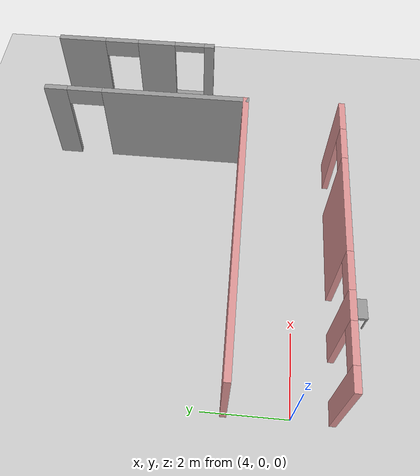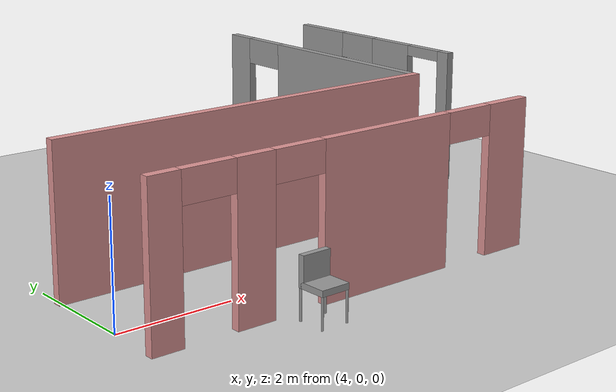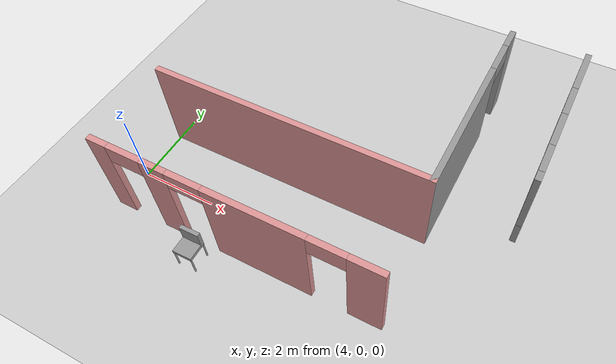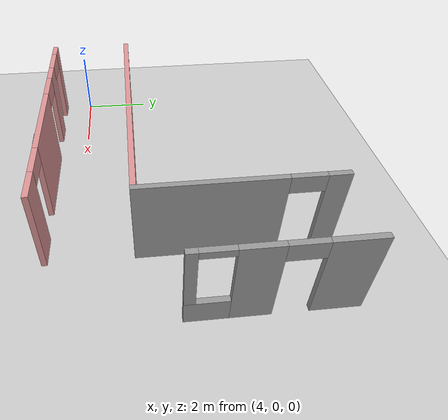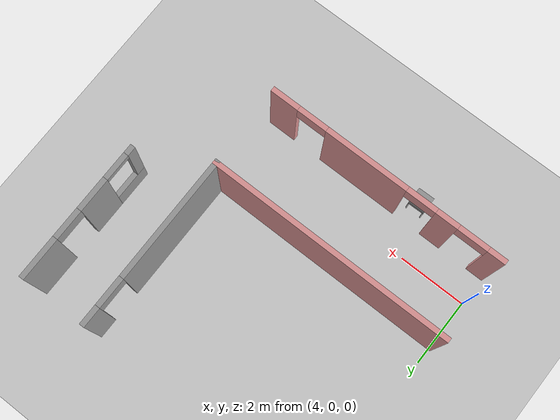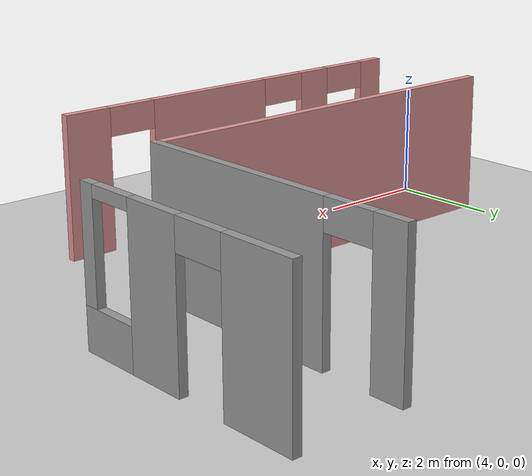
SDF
<sdf version="1.6">
 <world name="default">
  <model name="ground_plane">
   <static>1</static>
   <link name="link">
    <collision name="collision">
     <geometry><plane><normal>0 0 1</normal><size>100 100</size></plane></geometry>
     <surface>
      <contact><collide_bitmask>65535</collide_bitmask></contact>
      <friction><ode><mu>100</mu><mu2>50</mu2></ode></friction>
     </surface>
    </collision>
    <visual name="visual">
     <cast_shadows>0</cast_shadows>
     <geometry><plane><normal>0 0 1</normal><size>100 100</size></plane></geometry>
     <material>
      <script><uri>file://media/materials/scripts/gazebo.material</uri><name>Gazebo/Grey</name></script>
     </material>
    </visual>
   </link>
  </model>
  <model name="dunder_mifflin_scranton_full">
   <pose>4.5312 0.479645 0 0 -0 0</pose>
   <link name="Wall_31">
    <collision name="Wall_31_Collision">
     <geometry><box><size>7.25 0.15 2.5</size></box></geometry>
     <pose>0 0 1.25 0 -0 0</pose>
    </collision>
    <visual name="Wall_31_Visual">
     <pose>0 0 1.25 0 -0 0</pose>
     <geometry><box><size>7.25 0.15 2.5</size></box></geometry>
     <material>
      <script><uri>file://media/materials/scripts/gazebo.material</uri><name>Gazebo/Grey</name></script>
      <ambient>0.866667 0.584314 0.584314 1</ambient>
     </material>
     <meta><layer>0</layer></meta>
    </visual>
    <pose>3.02474 0.997169 0 0 -0 0</pose>
   </link>
   <link name="Wall_34">
    <pose>3.04223 -1.39897 0 0 -0 0</pose>
    <visual name="Wall_34_Visual_0">
     <pose>-3.36018 0 1.25 0 -0 0</pose>
     <geometry><box><size>0.529643 0.15 2.5</size></box></geometry>
     <material>
      <script><uri>file://media/materials/scripts/gazebo.material</uri><name>Gazebo/Grey</name></script>
      <ambient>0.866667 0.584314 0.584314 1</ambient>
     </material>
     <meta><layer>0</layer></meta>
    </visual>
    <collision name="Wall_34_Collision_0">
     <geometry><box><size>0.529643 0.15 2.5</size></box></geometry>
     <pose>-3.36018 0 1.25 0 -0 0</pose>
    </collision>
    <visual name="Wall_34_Visual_1">
     <pose>-1.86211 0 1.25 0 -0 0</pose>
     <geometry><box><size>0.666501 0.15 2.5</size></box></geometry>
     <material>
      <script><uri>file://media/materials/scripts/gazebo.material</uri><name>Gazebo/Grey</name></script>
      <ambient>0.866667 0.584314 0.584314 1</ambient>
     </material>
     <meta><layer>0</layer></meta>
    </visual>
    <collision name="Wall_34_Collision_1">
     <geometry><box><size>0.666501 0.15 2.5</size></box></geometry>
     <pose>-1.86211 0 1.25 0 -0 0</pose>
    </collision>
    <visual name="Wall_34_Visual_2">
     <pose>0.624524 0 1.25 0 -0 0</pose>
     <geometry><box><size>2.50676 0.15 2.5</size></box></geometry>
     <material>
      <script><uri>file://media/materials/scripts/gazebo.material</uri><name>Gazebo/Grey</name></script>
      <ambient>0.866667 0.584314 0.584314 1</ambient>
     </material>
     <meta><layer>0</layer></meta>
    </visual>
    <collision name="Wall_34_Collision_2">
     <geometry><box><size>2.50676 0.15 2.5</size></box></geometry>
     <pose>0.624524 0 1.25 0 -0 0</pose>
    </collision>
    <visual name="Wall_34_Visual_3">
     <pose>3.20145 0 1.25 0 -0 0</pose>
     <geometry><box><size>0.847096 0.15 2.5</size></box></geometry>
     <material>
      <script><uri>file://media/materials/scripts/gazebo.material</uri><name>Gazebo/Grey</name></script>
      <ambient>0.866667 0.584314 0.584314 1</ambient>
     </material>
     <meta><layer>0</layer></meta>
    </visual>
    <collision name="Wall_34_Collision_3">
     <geometry><box><size>0.847096 0.15 2.5</size></box></geometry>
     <pose>3.20145 0 1.25 0 -0 0</pose>
    </collision>
    <visual name="Wall_34_Visual_4">
     <pose>-2.64536 0 2.25 0 -0 0</pose>
     <geometry><box><size>0.9 0.15 0.5</size></box></geometry>
     <material>
      <script><uri>file://media/materials/scripts/gazebo.material</uri><name>Gazebo/Grey</name></script>
      <ambient>0.866667 0.584314 0.584314 1</ambient>
     </material>
     <meta><layer>0</layer></meta>
    </visual>
    <collision name="Wall_34_Collision_4">
     <geometry><box><size>0.9 0.15 0.5</size></box></geometry>
     <pose>-2.64536 0 2.25 0 -0 0</pose>
    </collision>
    <visual name="Wall_34_Visual_5">
     <pose>-1.07886 0 2.25 0 -0 0</pose>
     <geometry><box><size>0.9 0.15 0.5</size></box></geometry>
     <material>
      <script><uri>file://media/materials/scripts/gazebo.material</uri><name>Gazebo/Grey</name></script>
      <ambient>0.866667 0.584314 0.584314 1</ambient>
     </material>
     <meta><layer>0</layer></meta>
    </visual>
    <collision name="Wall_34_Collision_5">
     <geometry><box><size>0.9 0.15 0.5</size></box></geometry>
     <pose>-1.07886 0 2.25 0 -0 0</pose>
    </collision>
    <visual name="Wall_34_Visual_6">
     <pose>2.3279 0 2.25 0 -0 0</pose>
     <geometry><box><size>0.9 0.15 0.5</size></box></geometry>
     <material>
      <script><uri>file://media/materials/scripts/gazebo.material</uri><name>Gazebo/Grey</name></script>
      <ambient>0.866667 0.584314 0.584314 1</ambient>
     </material>
     <meta><layer>0</layer></meta>
    </visual>
    <collision name="Wall_34_Collision_6">
     <geometry><box><size>0.9 0.15 0.5</size></box></geometry>
     <pose>2.3279 0 2.25 0 -0 0</pose>
    </collision>
   </link>
   <link name="Wall_36">
    <pose>6.57474 3.54717 0 0 -0 1.5708</pose>
    <visual name="Wall_36_Visual_0">
     <pose>-0.74582 0 1.25 0 -0 0</pose>
     <geometry><box><size>3.75836 0.15 2.5</size></box></geometry>
     <material>
      <script><uri>file://media/materials/scripts/gazebo.material</uri><name>Gazebo/Grey</name></script>
      <ambient>1 1 1 1</ambient>
     </material>
     <meta><layer>0</layer></meta>
    </visual>
    <collision name="Wall_36_Collision_0">
     <geometry><box><size>3.75836 0.15 2.5</size></box></geometry>
     <pose>-0.74582 0 1.25 0 -0 0</pose>
    </collision>
    <visual name="Wall_36_Visual_1">
     <pose>2.32918 0 1.25 0 -0 0</pose>
     <geometry><box><size>0.591641 0.15 2.5</size></box></geometry>
     <material>
      <script><uri>file://media/materials/scripts/gazebo.material</uri><name>Gazebo/Grey</name></script>
      <ambient>1 1 1 1</ambient>
     </material>
     <meta><layer>0</layer></meta>
    </visual>
    <collision name="Wall_36_Collision_1">
     <geometry><box><size>0.591641 0.15 2.5</size></box></geometry>
     <pose>2.32918 0 1.25 0 -0 0</pose>
    </collision>
    <visual name="Wall_36_Visual_2">
     <pose>1.58336 0 2.25 0 -0 0</pose>
     <geometry><box><size>0.9 0.15 0.5</size></box></geometry>
     <material>
      <script><uri>file://media/materials/scripts/gazebo.material</uri><name>Gazebo/Grey</name></script>
      <ambient>1 1 1 1</ambient>
     </material>
     <meta><layer>0</layer></meta>
    </visual>
    <collision name="Wall_36_Collision_2">
     <geometry><box><size>0.9 0.15 0.5</size></box></geometry>
     <pose>1.58336 0 2.25 0 -0 0</pose>
    </collision>
   </link>
   <link name="Wall_38">
    <pose>8.48212 4.07176 0 0 -0 -1.5708</pose>
    <visual name="Wall_38_Visual_0">
     <pose>-1.4899 0 1.25 0 -0 0</pose>
     <geometry><box><size>1.27021 0.15 2.5</size></box></geometry>
     <material>
      <script><uri>file://media/materials/scripts/gazebo.material</uri><name>Gazebo/Grey</name></script>
      <ambient>0.423529 0.423529 0.423529 1</ambient>
     </material>
     <meta><layer>0</layer></meta>
    </visual>
    <collision name="Wall_38_Collision_0">
     <geometry><box><size>1.27021 0.15 2.5</size></box></geometry>
     <pose>-1.4899 0 1.25 0 -0 0</pose>
    </collision>
    <visual name="Wall_38_Visual_1">
     <pose>0.548931 0 1.25 0 -0 0</pose>
     <geometry><box><size>1.00745 0.15 2.5</size></box></geometry>
     <material>
      <script><uri>file://media/materials/scripts/gazebo.material</uri><name>Gazebo/Grey</name></script>
      <ambient>0.423529 0.423529 0.423529 1</ambient>
     </material>
     <meta><layer>0</layer></meta>
    </visual>
    <collision name="Wall_38_Collision_1">
     <geometry><box><size>1.00745 0.15 2.5</size></box></geometry>
     <pose>0.548931 0 1.25 0 -0 0</pose>
    </collision>
    <visual name="Wall_38_Visual_2">
     <pose>1.58883 0 0.35 0 -0 0</pose>
     <geometry><box><size>1.07234 0.15 0.7</size></box></geometry>
     <material>
      <script><uri>file://media/materials/scripts/gazebo.material</uri><name>Gazebo/Grey</name></script>
      <ambient>0.423529 0.423529 0.423529 1</ambient>
     </material>
     <meta><layer>0</layer></meta>
    </visual>
    <collision name="Wall_38_Collision_2">
     <geometry><box><size>1.07234 0.15 0.7</size></box></geometry>
     <pose>1.58883 0 0.35 0 -0 0</pose>
    </collision>
    <visual name="Wall_38_Visual_3">
     <pose>1.98883 0 1.6 0 -0 0</pose>
     <geometry><box><size>0.272344 0.15 1.8</size></box></geometry>
     <material>
      <script><uri>file://media/materials/scripts/gazebo.material</uri><name>Gazebo/Grey</name></script>
      <ambient>0.423529 0.423529 0.423529 1</ambient>
     </material>
     <meta><layer>0</layer></meta>
    </visual>
    <collision name="Wall_38_Collision_3">
     <geometry><box><size>0.272344 0.15 1.8</size></box></geometry>
     <pose>1.98883 0 1.6 0 -0 0</pose>
    </collision>
    <visual name="Wall_38_Visual_4">
     <pose>-0.404794 0 2.25 0 -0 0</pose>
     <geometry><box><size>0.9 0.15 0.5</size></box></geometry>
     <material>
      <script><uri>file://media/materials/scripts/gazebo.material</uri><name>Gazebo/Grey</name></script>
      <ambient>0.423529 0.423529 0.423529 1</ambient>
     </material>
     <meta><layer>0</layer></meta>
    </visual>
    <collision name="Wall_38_Collision_4">
     <geometry><box><size>0.9 0.15 0.5</size></box></geometry>
     <pose>-0.404794 0 2.25 0 -0 0</pose>
    </collision>
    <visual name="Wall_38_Visual_5">
     <pose>1.45266 0 2.4 0 -0 0</pose>
     <geometry><box><size>0.8 0.15 0.2</size></box></geometry>
     <material>
      <script><uri>file://media/materials/scripts/gazebo.material</uri><name>Gazebo/Grey</name></script>
      <ambient>0.423529 0.423529 0.423529 1</ambient>
     </material>
     <meta><layer>0</layer></meta>
    </visual>
    <collision name="Wall_38_Collision_5">
     <geometry><box><size>0.8 0.15 0.2</size></box></geometry>
     <pose>1.45266 0 2.4 0 -0 0</pose>
    </collision>
   </link>
   <static>1</static>
  </model>
  <model name="chair_13">
   <link name="link_0">
    <inertial>
     <mass>1</mass>
     <inertia><ixx>0.145833</ixx><ixy>0</ixy><ixz>0</ixz><iyy>0.145833</iyy><iyz>0</iyz><izz>0.125</izz></inertia>
    </inertial>
    <pose>-0.23 -0.19667 -0.280001 0 -0 0</pose>
    <visual name="visual">
     <geometry><cylinder><radius>0.02</radius><length>0.5</length></cylinder></geometry>
     <material>
      <lighting>1</lighting>
      <script><uri>file://media/materials/scripts/gazebo.material</uri><name>Gazebo/Grey</name></script>
      <shader type="vertex"><normal_map>__default__</normal_map></shader>
      <ambient>0.3 0.3 0.3 1</ambient>
      <diffuse>0.7 0.7 0.7 1</diffuse>
      <specular>0.01 0.01 0.01 1</specular>
      <emissive>0 0 0 1</emissive>
     </material>
    </visual>
    <collision name="collision">
     <geometry><cylinder><radius>0.02</radius><length>0.5</length></cylinder></geometry>
     <surface>
      <friction>
       <ode><mu>1</mu><mu2>1</mu2><fdir1>0 0 0</fdir1><slip1>0</slip1><slip2>0</slip2></ode>
       <torsional>
        <coefficient>1</coefficient>
        <patch_radius>0</patch_radius>
        <surface_radius>0</surface_radius>
        <use_patch_radius>1</use_patch_radius>
        <ode><slip>0</slip></ode>
       </torsional>
      </friction>
      <bounce><restitution_coefficient>0</restitution_coefficient><threshold>1e+06</threshold></bounce>
      <contact>
       <collide_without_contact>0</collide_without_contact>
       <collide_without_contact_bitmask>1</collide_without_contact_bitmask>
       <collide_bitmask>1</collide_bitmask>
       <ode>
        <soft_cfm>0</soft_cfm>
        <soft_erp>0.2</soft_erp>
        <kp>1e+13</kp>
        <kd>1</kd>
        <max_vel>0.01</max_vel>
        <min_depth>0</min_depth>
       </ode>
       <bullet>
        <split_impulse>1</split_impulse>
        <split_impulse_penetration_threshold>-0.01</split_impulse_penetration_threshold>
        <soft_cfm>0</soft_cfm>
        <soft_erp>0.2</soft_erp>
        <kp>1e+13</kp>
        <kd>1</kd>
       </bullet>
      </contact>
     </surface>
    </collision>
   </link>
   <link name="link_0_clone">
    <inertial>
     <mass>1</mass>
     <inertia><ixx>0.145833</ixx><ixy>0</ixy><ixz>0</ixz><iyy>0.145833</iyy><iyz>0</iyz><izz>0.125</izz></inertia>
    </inertial>
    <pose>0.23 -0.19667 -0.280001 0 -0 0</pose>
    <visual name="visual">
     <geometry><cylinder><radius>0.02</radius><length>0.5</length></cylinder></geometry>
     <material>
      <lighting>1</lighting>
      <script><uri>file://media/materials/scripts/gazebo.material</uri><name>Gazebo/Grey</name></script>
      <shader type="vertex"><normal_map>__default__</normal_map></shader>
      <ambient>0.3 0.3 0.3 1</ambient>
      <diffuse>0.7 0.7 0.7 1</diffuse>
      <specular>0.01 0.01 0.01 1</specular>
      <emissive>0 0 0 1</emissive>
     </material>
    </visual>
    <collision name="collision">
     <geometry><cylinder><radius>0.02</radius><length>0.5</length></cylinder></geometry>
     <surface>
      <friction>
       <ode><mu>1</mu><mu2>1</mu2><fdir1>0 0 0</fdir1><slip1>0</slip1><slip2>0</slip2></ode>
       <torsional>
        <coefficient>1</coefficient>
        <patch_radius>0</patch_radius>
        <surface_radius>0</surface_radius>
        <use_patch_radius>1</use_patch_radius>
        <ode><slip>0</slip></ode>
       </torsional>
      </friction>
      <bounce><restitution_coefficient>0</restitution_coefficient><threshold>1e+06</threshold></bounce>
      <contact>
       <collide_without_contact>0</collide_without_contact>
       <collide_without_contact_bitmask>1</collide_without_contact_bitmask>
       <collide_bitmask>1</collide_bitmask>
       <ode>
        <soft_cfm>0</soft_cfm>
        <soft_erp>0.2</soft_erp>
        <kp>1e+13</kp>
        <kd>1</kd>
        <max_vel>0.01</max_vel>
        <min_depth>0</min_depth>
       </ode>
       <bullet>
        <split_impulse>1</split_impulse>
        <split_impulse_penetration_threshold>-0.01</split_impulse_penetration_threshold>
        <soft_cfm>0</soft_cfm>
        <soft_erp>0.2</soft_erp>
        <kp>1e+13</kp>
        <kd>1</kd>
       </bullet>
      </contact>
     </surface>
    </collision>
   </link>
   <link name="link_0_clone_0">
    <inertial>
     <mass>1</mass>
     <inertia><ixx>0.145833</ixx><ixy>0</ixy><ixz>0</ixz><iyy>0.145833</iyy><iyz>0</iyz><izz>0.125</izz></inertia>
    </inertial>
    <pose>0.23 0.26333 -0.280001 0 -0 0</pose>
    <visual name="visual">
     <geometry><cylinder><radius>0.02</radius><length>0.5</length></cylinder></geometry>
     <material>
      <lighting>1</lighting>
      <script><uri>file://media/materials/scripts/gazebo.material</uri><name>Gazebo/Grey</name></script>
      <shader type="vertex"><normal_map>__default__</normal_map></shader>
      <ambient>0.3 0.3 0.3 1</ambient>
      <diffuse>0.7 0.7 0.7 1</diffuse>
      <specular>0.01 0.01 0.01 1</specular>
      <emissive>0 0 0 1</emissive>
     </material>
    </visual>
    <collision name="collision">
     <geometry><cylinder><radius>0.02</radius><length>0.5</length></cylinder></geometry>
     <surface>
      <friction>
       <ode><mu>1</mu><mu2>1</mu2><fdir1>0 0 0</fdir1><slip1>0</slip1><slip2>0</slip2></ode>
       <torsional>
        <coefficient>1</coefficient>
        <patch_radius>0</patch_radius>
        <surface_radius>0</surface_radius>
        <use_patch_radius>1</use_patch_radius>
        <ode><slip>0</slip></ode>
       </torsional>
      </friction>
      <bounce><restitution_coefficient>0</restitution_coefficient><threshold>1e+06</threshold></bounce>
      <contact>
       <collide_without_contact>0</collide_without_contact>
       <collide_without_contact_bitmask>1</collide_without_contact_bitmask>
       <collide_bitmask>1</collide_bitmask>
       <ode>
        <soft_cfm>0</soft_cfm>
        <soft_erp>0.2</soft_erp>
        <kp>1e+13</kp>
        <kd>1</kd>
        <max_vel>0.01</max_vel>
        <min_depth>0</min_depth>
       </ode>
       <bullet>
        <split_impulse>1</split_impulse>
        <split_impulse_penetration_threshold>-0.01</split_impulse_penetration_threshold>
        <soft_cfm>0</soft_cfm>
        <soft_erp>0.2</soft_erp>
        <kp>1e+13</kp>
        <kd>1</kd>
       </bullet>
      </contact>
     </surface>
    </collision>
   </link>
   <link name="link_0_clone_1">
    <inertial>
     <mass>1</mass>
     <inertia><ixx>0.145833</ixx><ixy>0</ixy><ixz>0</ixz><iyy>0.145833</iyy><iyz>0</iyz><izz>0.125</izz></inertia>
    </inertial>
    <pose>-0.23 0.26333 -0.280001 0 -0 0</pose>
    <visual name="visual">
     <geometry><cylinder><radius>0.02</radius><length>0.5</length></cylinder></geometry>
     <material>
      <lighting>1</lighting>
      <script><uri>file://media/materials/scripts/gazebo.material</uri><name>Gazebo/Grey</name></script>
      <shader type="vertex"><normal_map>__default__</normal_map></shader>
      <ambient>0.3 0.3 0.3 1</ambient>
      <diffuse>0.7 0.7 0.7 1</diffuse>
      <specular>0.01 0.01 0.01 1</specular>
      <emissive>0 0 0 1</emissive>
     </material>
    </visual>
    <collision name="collision">
     <geometry><cylinder><radius>0.02</radius><length>0.5</length></cylinder></geometry>
     <surface>
      <friction>
       <ode><mu>1</mu><mu2>1</mu2><fdir1>0 0 0</fdir1><slip1>0</slip1><slip2>0</slip2></ode>
       <torsional>
        <coefficient>1</coefficient>
        <patch_radius>0</patch_radius>
        <surface_radius>0</surface_radius>
        <use_patch_radius>1</use_patch_radius>
        <ode><slip>0</slip></ode>
       </torsional>
      </friction>
      <bounce><restitution_coefficient>0</restitution_coefficient><threshold>1e+06</threshold></bounce>
      <contact>
       <collide_without_contact>0</collide_without_contact>
       <collide_without_contact_bitmask>1</collide_without_contact_bitmask>
       <collide_bitmask>1</collide_bitmask>
       <ode>
        <soft_cfm>0</soft_cfm>
        <soft_erp>0.2</soft_erp>
        <kp>1e+13</kp>
        <kd>1</kd>
        <max_vel>0.01</max_vel>
        <min_depth>0</min_depth>
       </ode>
       <bullet>
        <split_impulse>1</split_impulse>
        <split_impulse_penetration_threshold>-0.01</split_impulse_penetration_threshold>
        <soft_cfm>0</soft_cfm>
        <soft_erp>0.2</soft_erp>
        <kp>1e+13</kp>
        <kd>1</kd>
       </bullet>
      </contact>
     </surface>
    </collision>
   </link>
   <link name="link_2">
    <inertial>
     <mass>1</mass>
     <inertia>
      <ixx>0.166667</ixx>
      <ixy>0</ixy>
      <ixz>0</ixz>
      <iyy>0.166667</iyy>
      <iyz>0</iyz>
      <izz>0.166667</izz>
     </inertia>
    </inertial>
    <pose>0 0.03333 0.019999 0 -0 0</pose>
    <visual name="visual">
     <geometry><box><size>0.5 0.5 0.1</size></box></geometry>
     <material>
      <lighting>1</lighting>
      <script><uri>file://media/materials/scripts/gazebo.material</uri><name>Gazebo/Grey</name></script>
      <shader type="vertex"><normal_map>__default__</normal_map></shader>
      <ambient>0.3 0.3 0.3 1</ambient>
      <diffuse>0.7 0.7 0.7 1</diffuse>
      <specular>0.01 0.01 0.01 1</specular>
      <emissive>0 0 0 1</emissive>
     </material>
    </visual>
    <collision name="collision">
     <geometry><box><size>0.5 0.5 0.1</size></box></geometry>
     <surface>
      <friction>
       <ode><mu>1</mu><mu2>1</mu2><fdir1>0 0 0</fdir1><slip1>0</slip1><slip2>0</slip2></ode>
       <torsional>
        <coefficient>1</coefficient>
        <patch_radius>0</patch_radius>
        <surface_radius>0</surface_radius>
        <use_patch_radius>1</use_patch_radius>
        <ode><slip>0</slip></ode>
       </torsional>
      </friction>
      <bounce><restitution_coefficient>0</restitution_coefficient><threshold>1e+06</threshold></bounce>
      <contact>
       <collide_without_contact>0</collide_without_contact>
       <collide_without_contact_bitmask>1</collide_without_contact_bitmask>
       <collide_bitmask>1</collide_bitmask>
       <ode>
        <soft_cfm>0</soft_cfm>
        <soft_erp>0.2</soft_erp>
        <kp>1e+13</kp>
        <kd>1</kd>
        <max_vel>0.01</max_vel>
        <min_depth>0</min_depth>
       </ode>
       <bullet>
        <split_impulse>1</split_impulse>
        <split_impulse_penetration_threshold>-0.01</split_impulse_penetration_threshold>
        <soft_cfm>0</soft_cfm>
        <soft_erp>0.2</soft_erp>
        <kp>1e+13</kp>
        <kd>1</kd>
       </bullet>
      </contact>
     </surface>
    </collision>
   </link>
   <link name="link_2_clone">
    <inertial>
     <mass>1</mass>
     <inertia>
      <ixx>0.166667</ixx>
      <ixy>0</ixy>
      <ixz>0</ixz>
      <iyy>0.166667</iyy>
      <iyz>0</iyz>
      <izz>0.166667</izz>
     </inertia>
    </inertial>
    <pose>0 -0.166646 0.220004 1.5707 -0 0</pose>
    <visual name="visual">
     <geometry><box><size>0.5 0.5 0.1</size></box></geometry>
     <material>
      <lighting>1</lighting>
      <script><uri>file://media/materials/scripts/gazebo.material</uri><name>Gazebo/Grey</name></script>
      <shader type="vertex"><normal_map>__default__</normal_map></shader>
      <ambient>0.3 0.3 0.3 1</ambient>
      <diffuse>0.7 0.7 0.7 1</diffuse>
      <specular>0.01 0.01 0.01 1</specular>
      <emissive>0 0 0 1</emissive>
     </material>
    </visual>
    <collision name="collision">
     <geometry><box><size>0.5 0.5 0.1</size></box></geometry>
     <surface>
      <friction>
       <ode><mu>1</mu><mu2>1</mu2><fdir1>0 0 0</fdir1><slip1>0</slip1><slip2>0</slip2></ode>
       <torsional>
        <coefficient>1</coefficient>
        <patch_radius>0</patch_radius>
        <surface_radius>0</surface_radius>
        <use_patch_radius>1</use_patch_radius>
        <ode><slip>0</slip></ode>
       </torsional>
      </friction>
      <bounce><restitution_coefficient>0</restitution_coefficient><threshold>1e+06</threshold></bounce>
      <contact>
       <collide_without_contact>0</collide_without_contact>
       <collide_without_contact_bitmask>1</collide_without_contact_bitmask>
       <collide_bitmask>1</collide_bitmask>
       <ode>
        <soft_cfm>0</soft_cfm>
        <soft_erp>0.2</soft_erp>
        <kp>1e+13</kp>
        <kd>1</kd>
        <max_vel>0.01</max_vel>
        <min_depth>0</min_depth>
       </ode>
       <bullet>
        <split_impulse>1</split_impulse>
        <split_impulse_penetration_threshold>-0.01</split_impulse_penetration_threshold>
        <soft_cfm>0</soft_cfm>
        <soft_erp>0.2</soft_erp>
        <kp>1e+13</kp>
        <kd>1</kd>
       </bullet>
      </contact>
     </surface>
    </collision>
   </link>
   <joint name="link_0_clone_JOINT_2" type="fixed">
    <parent>link_2</parent>
    <child>link_0_clone</child>
    <physics>
     <ode><limit><cfm>0</cfm><erp>0.2</erp></limit><suspension><cfm>0</cfm><erp>0.2</erp></suspension></ode>
    </physics>
   </joint>
   <joint name="link_2_JOINT_1" type="fixed">
    <parent>link_2</parent>
    <child>link_0</child>
    <physics>
     <ode><limit><cfm>0</cfm><erp>0.2</erp></limit><suspension><cfm>0</cfm><erp>0.2</erp></suspension></ode>
    </physics>
   </joint>
   <joint name="link_2_JOINT_3" type="fixed">
    <parent>link_2</parent>
    <child>link_0_clone_0</child>
    <physics>
     <ode><limit><cfm>0</cfm><erp>0.2</erp></limit><suspension><cfm>0</cfm><erp>0.2</erp></suspension></ode>
    </physics>
   </joint>
   <joint name="link_2_JOINT_4" type="fixed">
    <parent>link_2</parent>
    <child>link_0_clone_1</child>
    <physics>
     <ode><limit><cfm>0</cfm><erp>0.2</erp></limit><suspension><cfm>0</cfm><erp>0.2</erp></suspension></ode>
    </physics>
   </joint>
   <joint name="link_2_JOINT_5" type="fixed">
    <parent>link_2</parent>
    <child>link_2_clone</child>
    <physics>
     <ode><limit><cfm>0</cfm><erp>0.2</erp></limit><suspension><cfm>0</cfm><erp>0.2</erp></suspension></ode>
    </physics>
   </joint>
   <static>0</static>
   <pose>6.52672 -1.42502 0.530001 1e-06 -0 -3.1274</pose>
  </model>
 </world>
</sdf>
